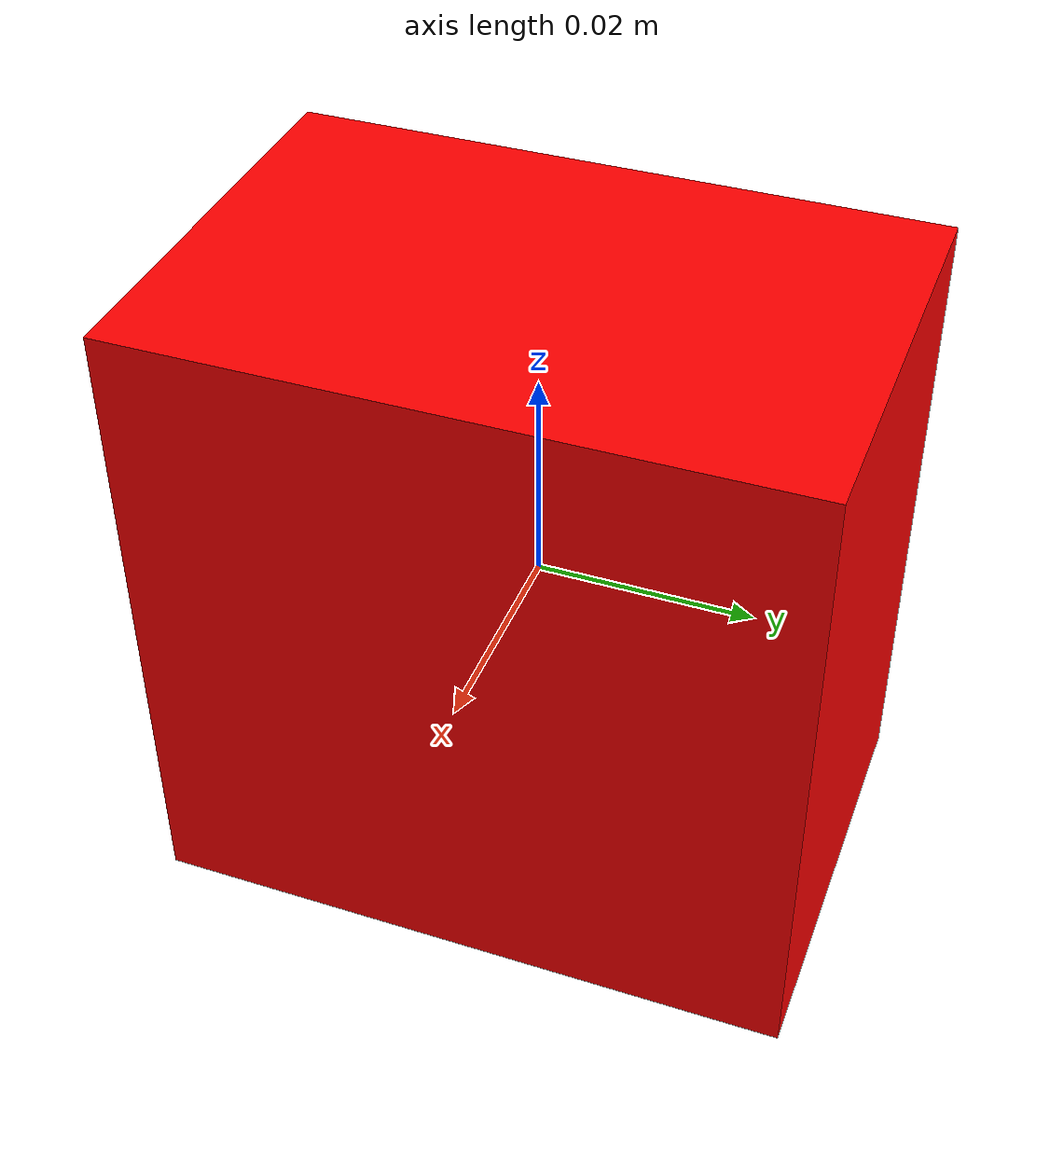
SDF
<?xml version="1.0" ?>
<sdf version="1.6">
  <model name="cube">
    <static>false</static>
    <link name="link">
      <inertial>
        <mass>0.01</mass>
        <inertia>
          <ixx>0.0000217</ixx>
          <ixy>0.0</ixy>
          <ixz>0.0</ixz>
          <iyy>0.0000217</iyy>
          <iyz>0.0</iyz>
          <izz>0.0000300</izz>
        </inertia>
      </inertial>
      <collision name="collision">
        <geometry>
          <box>
            <size>0.04 0.06 0.06</size>
          </box>
        </geometry>
        <surface>
          <contact>
            <ode>
              <kp>1e4</kp>
              <kd>50.0</kd>
              <min_depth>0.0</min_depth>
            </ode>
          </contact>
          <friction>
            <ode>
              <mu>50.0</mu>
              <mu2>50.0</mu2>
            </ode>
          </friction>
        </surface>
      </collision>
      <visual name="visual">
        <geometry>
          <box>
            <size>0.04 0.06 0.06</size>
          </box>
        </geometry>
        <material>
          <ambient>1 0 0 1</ambient>
          <diffuse>1 0 0 1</diffuse>
          <specular>0.1 0.1 0.1 1</specular>
        </material>
      </visual>
    </link>
  </model>
</sdf>
